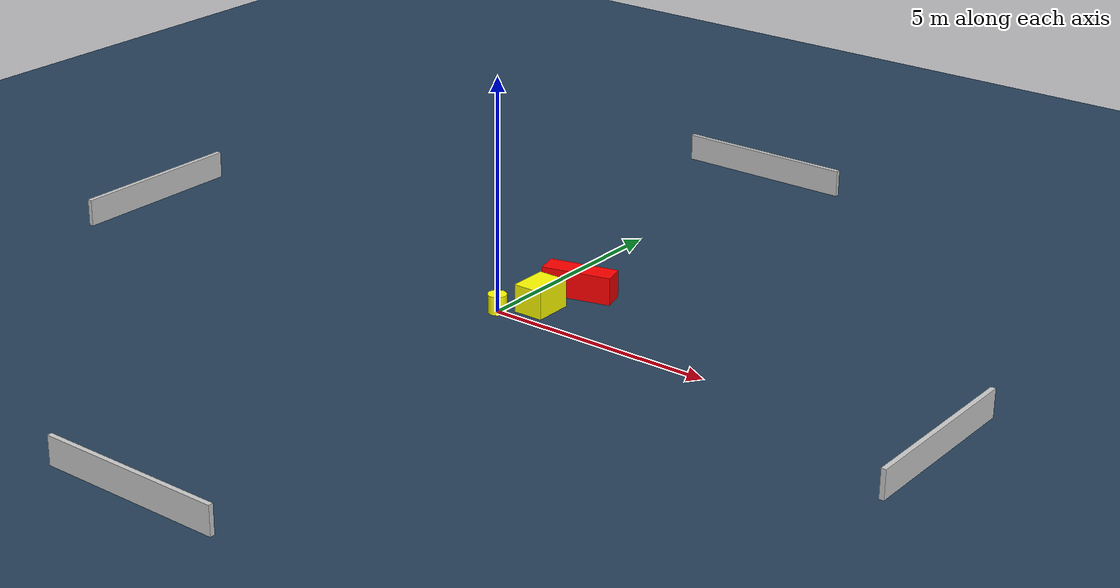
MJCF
<?xml version="1.0" ?>
<mujoco model="generated_environment">
  <option timestep="0.01" integrator="RK4" cone="elliptic"/>
  <default>
    <geom density="1"/>
  </default>
  <asset>
    <texture builtin="gradient" height="3072" name="skybox" rgb1="0.3 0.5 0.7" rgb2="0 0 0" type="skybox" width="512"/>
    <texture builtin="checker" height="300" name="groundplane" rgb1="0.2 0.3 0.4" rgb2="0.1 0.2 0.3" type="2d" width="300"/>
    <material name="groundplane" reflectance="0.2" texrepeat="5 5" texture="groundplane"/>
  </asset>
  <worldbody>
    <light dir="0 0 -1" directional="true" pos="0 0 1.5"/>
    <geom condim="3" friction="0.5 0.005 0.001" material="groundplane" name="floor" pos="0 0 0" size="0 0 0.05" type="plane"/>
    <body name="walls">
      <geom name="wall_1" condim="4" pos="-10.0 0.0 0.3" rgba="0.800000011920929 0.800000011920929 0.800000011920929 1.0" size="0.05 2.0 0.3" type="box"/>
      <geom name="wall_2" condim="4" pos="10.0 0.0 0.3" rgba="0.800000011920929 0.800000011920929 0.800000011920929 1.0" size="0.05 2.0 0.3" type="box"/>
      <geom name="wall_3" condim="4" pos="0.0 -10.0 0.3" rgba="0.800000011920929 0.800000011920929 0.800000011920929 1.0" size="2.0 0.05 0.3" type="box"/>
      <geom name="wall_4" condim="4" pos="0.0 10.0 0.3" rgba="0.800000011920929 0.800000011920929 0.800000011920929 1.0" size="2.0 0.05 0.3" type="box"/>
    </body>
    <body name="robot">
      <joint name="joint_x" type="slide" pos="0 0 0" axis="1 0 0"/>
      <joint name="joint_y" type="slide" pos="0 0 0" axis="0 1 0"/>
      <geom name="robot" type="cylinder" pos="0.0 0.0 0.2" size="0.2 0.2 0.0" mass="5.0" friction="1.0 0.005 0.0001" condim="4" rgba="1.0 1.0 0.0 1.0"/>
    </body>
    <body name="obstacle_1_movable">
      <geom name="obstacle_1_movable" condim="4" pos="0.5945429046733521 0.6601672117735435 0.3" euler="0 0 90.49901094598958" friction="0.0 0.005 0.001" rgba="1.0 1.0 0.0 1.0" size="0.4303720060070566 0.33173947988660313 0.3" type="box" mass="0.1"/>
      <joint type="free"/>
    </body>
    <body name="obstacle_2_static">
      <geom name="obstacle_2_static" condim="4" pos="0.8057173310839741 1.7168493168271108 0.3" euler="0 0 104.26577330896376" friction="0.0 0.005 0.001" rgba="1.0 0.0 0.0 1.0" size="0.240646598085802 0.7505196754698202 0.3" type="box"/>
    </body>
  </worldbody>
  <actuator>
    <motor name="actuator_x" joint="joint_x" gear="1" ctrlrange="-1 1"/>
    <motor name="actuator_y" joint="joint_y" gear="1" ctrlrange="-1 1"/>
  </actuator>
</mujoco>
